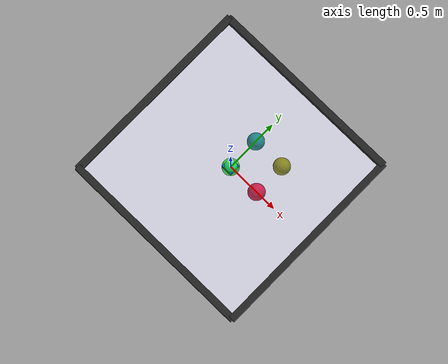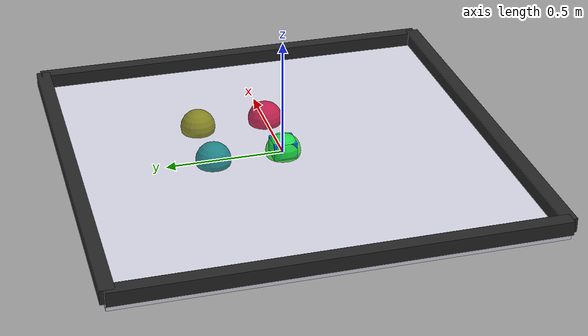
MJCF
<mujoco model="reacher">
    <compiler angle="radian" inertiafromgeom="true"/>
    <default>
        <joint armature="1" damping="1" limited="true"/>
        <geom contype="1" friction="1 0.1 0.1" rgba="0.7 0.7 0 1"/>
    </default>
    <option gravity="0 0 -9.81" integrator="RK4" timestep="0.01"/>
    <asset>
        <texture type="skybox" builtin="gradient" rgb1="0.9 0.7 0.9" rgb2="0.94 0.97 0.97" width="3" height="3"/>
    </asset>
    <worldbody>
        <include file="lighting.xml"/>
        <include file="bordered-arena.xml"/>
        <!-- Arm -->
        <body name="object" pos="0 0 0.01">
            <geom rgba="0 0.5 1 1" type="box" size="0.05 0.05 0.05" density='0.1' contype="1"/>
            <joint name="particle_x" type="slide" pos="0 0 0" axis="1 0 0" range="-0.8 0.8" damping="0.01"/>
            <joint name="particle_y" type="slide" pos="0 0 0" axis="0 1 0" range="-0.8 0.8" damping="0.01"/>
        </body>
        <!-- Goal -->
        <body name="goal_0" pos="0 0 0.01">
            <geom rgba="0.2 1.0 0.2 0.8" type="sphere" size="0.075" density='0.00001' contype="0" conaffinity="0"/>
            <joint name="goal_0_x" type="slide" pos="0 0 0" axis="1 0 0" range="-0.8 0.8" damping="0.5"/>
            <joint name="goal_0_y" type="slide" pos="0 0 0" axis="0 1 0" range="-0.8 0.8" damping="0.5"/>
        </body>

        <body name="goal_1" pos="0 0.3 0.01">
            <geom rgba="0.0 0.5 0.5 0.8" type="sphere" size="0.075" density='0.00001' contype="0" conaffinity="0"/>
            <joint name="goal_1_x" type="slide" pos="0 0 0" axis="1 0 0" range="-0.8 0.8" damping="0.5"/>
            <joint name="goal_1_y" type="slide" pos="0 0 0" axis="0 1 0" range="-0.8 0.8" damping="0.5"/>
        </body>

        <body name="goal_2" pos="0.3 0 0.01">
            <geom rgba="0.8 0.0 0.2 0.8" type="sphere" size="0.075" density='0.00001' contype="0" conaffinity="0"/>
            <joint name="goal_2_x" type="slide" pos="0 0 0" axis="1 0 0" range="-0.8 0.8" damping="0.5"/>
            <joint name="goal_2_y" type="slide" pos="0 0 0" axis="0 1 0" range="-0.8 0.8" damping="0.5"/>
        </body>

        <body name="goal_3" pos="0.3 0.3 0.01">
            <geom rgba="0.5 0.5 0.0 0.8" type="sphere" size="0.075" density='0.00001' contype="0" conaffinity="0"/>
            <joint name="goal_3_x" type="slide" pos="0 0 0" axis="1 0 0" range="-0.8 0.8" damping="0.5"/>
            <joint name="goal_3_y" type="slide" pos="0 0 0" axis="0 1 0" range="-0.8 0.8" damping="0.5"/>
        </body>

    </worldbody>
    <actuator>
        <motor ctrllimited="true" ctrlrange="-2.0 2.0" gear="5.0" joint="particle_x"/>
        <motor ctrllimited="true" ctrlrange="-2.0 2.0" gear="5.0" joint="particle_y"/>
    </actuator>
</mujoco>

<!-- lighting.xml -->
<mujoco>
    <light directional="true" ambient="0.2 0.2 0.2" diffuse="0.8 0.8 0.8" specular="0.3 0.3 0.3"
           castshadow="false" pos="0.9 0.6 3" dir="-0.5 -0.5 -0.7" name="light0"/>
</mujoco>

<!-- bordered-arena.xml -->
<mujoco model="reacher">
    <!-- Arena -->
    <geom conaffinity="0" contype="0" name="ground" pos="0 0 -0.02" rgba="0.85 0.85 0.91 1"  size="0.9 0.9 0.01"
          type="box"/>
    <geom conaffinity="1" name="sideN" rgba="0.15 0.15 0.15 1" size=".9 0.03 0.03" pos="0 .89 0.03" type="box"/>
    <geom conaffinity="1" name="sideS" rgba="0.15 0.15 0.15 1" size=".9 0.03 0.03" pos="0 -.89 0.03" type="box"/>
    <geom conaffinity="1" name="sideW" rgba="0.15 0.15 0.15 1" size="0.03 .9 0.03" pos="-.89 0 0.03" type="box"/>
    <geom conaffinity="1" name="sideE" rgba="0.15 0.15 0.15 1" size="0.03 .9 0.03" pos=".89 0 0.03" type="box"/>
</mujoco>
